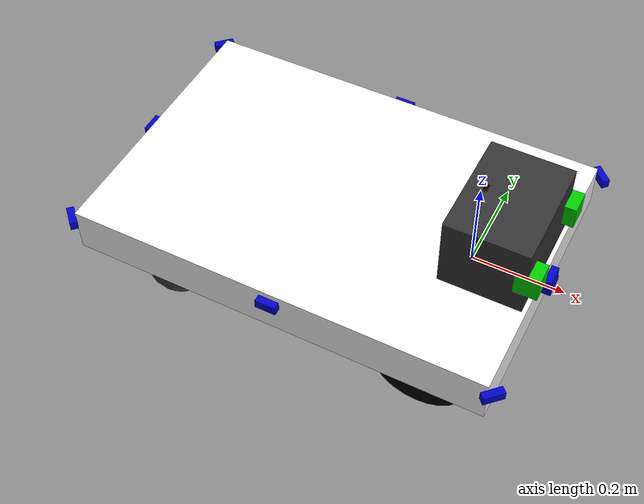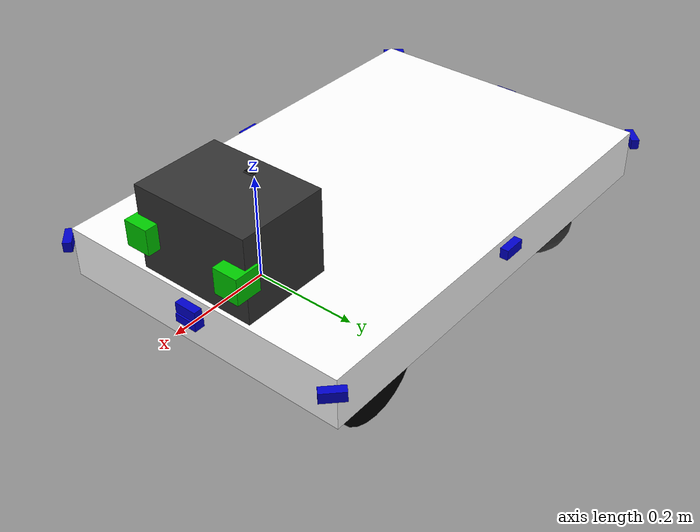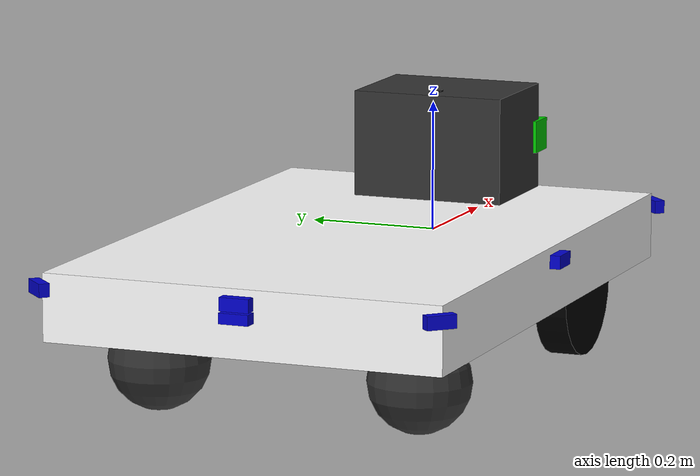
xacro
<?xml version="1.0"?>
<robot name="bytes-v2-nub" xmlns:xacro="http://www.ros.org/wiki/xacro">

    <!-- All measurements are in meters -->
    <xacro:property name="wheel_radius" value="0.1016" />
    <xacro:property name="wheel_mass" value="1"/>
    <xacro:property name="wheel_thickness" value="0.05"/>
    <xacro:property name="wheel_intertia" value="${1.0/12*wheel_mass*(3*wheel_radius*wheel_radius*wheel_radius + wheel_thickness*wheel_thickness)}"/>

    <xacro:property name="base_width" value="0.9144"/>
    <xacro:property name="base_length" value="0.6096"/>
    <xacro:property name="base_thickness" value="0.101092"/>
    <xacro:property name="base_mass" value="20"/>

    <xacro:property name="head_width" value="0.177"/>
    <xacro:property name="head_length" value="0.24"/>
    <xacro:property name="head_thickness" value="0.165"/>
    <xacro:property name="head_mass" value="0.5"/>

    <!-- distance from the edge of the base to the edge of the wheel -->
    <xacro:property name="wheel_base_separation" value="-0.1"/>
    <!-- signed offset from the center of base -->
    <xacro:property name="wheel_offset" value="0.3"/>
    <!-- vertical offset of wheel from the center of the chassis -->
    <xacro:property name="vertical_wheel_offset" value="-0.0762"/>

    <!-- caster offset from edge of chassis (assumed to be centered along the length) -->
    <xacro:property name="caster_offset" value="0.1"/>
    <xacro:property name="caster_radius" value="0.0762"/>
    <xacro:property name="caster_mass" value="0.5"/>
    <xacro:property name="caster_intertia" value="${2.0/5*caster_mass*caster_radius*caster_radius}"/>

    <!-- gazebo plugins -->
    <gazebo>
        <plugin name="gazebo_ros_control" filename="libgazebo_ros_control.so">
            <robotSimType>gazebo_ros_control/DefaultRobotHWSim</robotSimType>
            <legacyModeNS>false</legacyModeNS>
        </plugin>
    </gazebo>

    <xacro:include filename="$(find br-description)/urdf/macros.xacro" />
    <xacro:include filename="$(find br-description)/urdf/br-v2-nub.gazebo" />

    <link name="base_link"/>

    <!-- Add chassis and inertial link -->
    <link name="chassis">
        <interial>
            <xacro:chassis_inertial_params/>
        </interial>
        <visual>
            <xacro:chassis_geometry/>
            <material name="white" />
        </visual>
        <collision>
            <xacro:chassis_geometry/>
        </collision>
    </link>

    <joint name="base_link_joint" type="fixed">
        <origin xyz="${-wheel_offset} 0 0" rpy="0 0 0"/>
        <parent link="base_link"/>
        <child link="chassis"/>
    </joint>

    <!-- Head servo joint and transmission -->
    <link name="head">
        <visual>
            <xacro:head_geometry/>
            <material name="grey" />
        </visual>
        <collision>
            <xacro:head_geometry/>
        </collision>
        <inertial>
            <xacro:head_inertial_params/>
        </inertial>
    </link>
    <joint name="head_joint" type="fixed">
        <origin xyz="0.36 0.0 0.1325" rpy="0 0 0"/>
        <parent link="chassis" />
        <child link="head" />
    </joint>

    <!-- Add left and right wheels -->
    <link name="left_wheel">
        <inertial>
            <xacro:wheel_inertial_params />
        </inertial>
        <visual>
            <xacro:wheel_geometry />
            <material name="black" />
        </visual>
        <collision>
            <xacro:wheel_geometry />
        </collision>
    </link>

    <joint name="left_wheel_joint" type="continuous">
        <origin xyz="${wheel_offset} ${base_length/2 + wheel_base_separation + wheel_thickness/2} ${vertical_wheel_offset}" rpy="1.5708 0 0" />
        <parent link="chassis" />
        <child link="left_wheel" />
        <axis xyz="0 0 -1" />
        <limit effort="10" velocity="100" />
    </joint>

    <xacro:wheel_transmission name="left_wheel" />

    <link name="right_wheel">
        <inertial>
            <xacro:wheel_inertial_params />
        </inertial>
        <visual>
            <xacro:wheel_geometry />
            <material name="black" />
        </visual>
        <collision>
            <xacro:wheel_geometry />
        </collision>
    </link>

    <joint name="right_wheel_joint" type="continuous">
        <origin xyz="${wheel_offset} ${-1*(base_length/2 + wheel_base_separation + wheel_thickness/2)} ${vertical_wheel_offset}" rpy="1.5708 0 0" />
        <parent link="chassis" />
        <child link="right_wheel" />
        <axis xyz="0 0 -1" />
        <limit effort="10" velocity="100" />
    </joint>

    <xacro:wheel_transmission name="right_wheel" />

    <!-- Add left and right casters -->
    <link name="left_caster">
        <inertial>
            <xacro:caster_inertial_params />
        </inertial>
        <visual>
            <xacro:caster_geometry />
            <material name="grey" />
        </visual>
        <collision>
            <xacro:caster_geometry />
        </collision>
    </link>

    <joint name="left_caster_joint" type="fixed">
        <origin xyz="${-base_width/2 + caster_radius + caster_offset} ${-base_length/3} ${vertical_wheel_offset + caster_radius - wheel_radius}" rpy="0 0 0" />
        <parent link="chassis" />
        <child link="left_caster" />
    </joint>

    <link name="right_caster">
        <inertial>
            <xacro:caster_inertial_params />
        </inertial>
        <visual>
            <xacro:caster_geometry />
            <material name="grey" />
        </visual>
        <collision>
            <xacro:caster_geometry />
        </collision>
    </link>

    <joint name="right_caster_joint" type="fixed">
        <origin xyz="${-base_width/2 + caster_radius + caster_offset} ${base_length/3} ${vertical_wheel_offset + caster_radius - wheel_radius}" rpy="0 0 0" />
        <parent link="chassis" />
        <child link="right_caster" />
    </joint>

    <xacro:dist_sensor name="rear" x="${-(base_width/2 + 0.01)}" y="0" z="${base_thickness/2 - 0.02}" r="0" p="0" yaw="3.14159"/>
    <xacro:dist_sensor name="rear_bottom" x="${-(base_width/2 + 0.01)}" y="0" z="${base_thickness/2 - 0.04}" r="0" p="1.5708" yaw="3.14159"/>
    <xacro:dist_sensor name="rear_left" x="${-(base_width/2 + 0.01)}" y="${base_length/2}" z="${base_thickness/2 - 0.02}" r="0" p="0" yaw="2.356"/>
    <xacro:dist_sensor name="rear_right" x="${-(base_width/2 + 0.01)}" y="${-base_length/2}" z="${base_thickness/2 - 0.02}" r="0" p="0" yaw="3.927"/>
    <xacro:dist_sensor name="front" x="${(base_width/2 + 0.01)}" y="0" z="${base_thickness/2 - 0.02}" r="0" p="0" yaw="0"/>
    <xacro:dist_sensor name="front_bottom" x="${(base_width/2 + 0.01)}" y="0" z="${base_thickness/2 - 0.04}" r="0" p="1.5708" yaw="3.14159"/>
    <xacro:dist_sensor name="front_left" x="${(base_width/2 + 0.01)}" y="${base_length/2}" z="${base_thickness/2 - 0.02}" r="0" p="0" yaw="0.7854"/>
    <xacro:dist_sensor name="front_right" x="${(base_width/2 + 0.01)}" y="${-base_length/2}" z="${base_thickness/2 - 0.02}" r="0" p="0" yaw="-0.7854"/>
    <xacro:dist_sensor name="right" x="0" y="${-(base_length/2 + 0.01)}" z="${base_thickness/2 - 0.02}" r="0" p="0" yaw="-1.5708"/>
    <xacro:dist_sensor name="left" x="0" y="${base_length/2 + 0.01}" z="${base_thickness/2 - 0.02}" r="0" p="0" yaw="1.5708"/>

    <!-- IMU -->
    <link name="imu_link">
        <visual>
            <geometry>
                <box size="0.001 0.002 0.0005" />
            </geometry>
            <material name="black" />
        </visual>
    </link>
    <joint name="head_imu_joint" type="fixed">
        <origin xyz="0.0 0.00 0.08" rpy="0 0 0" />
        <parent link="head" />
        <child link="imu_link" />
    </joint>
    <gazebo reference="imu_link">
        <gravity>false</gravity>
        <sensor name="imu_sensor" type="imu">
            <always_on>true</always_on>
            <update_rate>30</update_rate>
            <visualize>true</visualize>
            <topic>__default_topic__</topic>
            <plugin filename="libgazebo_ros_imu_sensor.so" name="imu_plugin">
                <topicName>/imu/data</topicName>
                <bodyName>imu_link</bodyName>
                <updateRateHZ>60.0</updateRateHZ>
                <gaussianNoise>0.001</gaussianNoise>
                <xyzOffset>0 0 0</xyzOffset>
                <rpyOffset>0 0 0</rpyOffset>
                <frameName>imu_link</frameName>
            </plugin>
            <pose>0 0 0 0 0 0</pose>
        </sensor>
   </gazebo>

    <!-- Barometer -->
    <link name="barometer_link">
        <visual>
            <geometry>
                <box size="0.001 0.002 0.0005" />
            </geometry>
            <material name="black" />
        </visual>
    </link>
    <joint name="head_barometer_joint" type="fixed">
        <origin xyz="0.05 0.00 0.08" rpy="0 0 0" />
        <parent link="head" />
        <child link="barometer_link" />
    </joint>
    <gazebo>
      <plugin name="p3d_base_controller" filename="libgazebo_ros_p3d.so">
        <alwaysOn>true</alwaysOn>
        <updateRate>30.0</updateRate>
        <bodyName>base_link</bodyName>
        <topicName>ground_truth/state</topicName>
        <gaussianNoise>0.01</gaussianNoise>
        <frameName>world</frameName>
        <xyzOffsets>0 0 0</xyzOffsets>
        <rpyOffsets>0 0 0</rpyOffsets>
      </plugin>
    </gazebo>

    <!-- GPS -->
    <link name="gps_link">
        <visual>
            <geometry>
                <box size="0.01 0.02 0.005" />
            </geometry>
            <material name="black" />
        </visual>
    </link>
    <joint name="head_gps_joint" type="fixed">
        <origin xyz="-0.05 0.0 0.0825" rpy="0 0 0" />
        <parent link="head" />
        <child link="gps_link" />
    </joint>
    <gazebo>
        <plugin name="gps_controller" filename="libhector_gazebo_ros_gps.so">
            <updateRate>10.0</updateRate>
            <bodyName>base_link</bodyName>
            <frameId>gps_link</frameId>
            <topicName>/gps</topicName>
            <referenceLatitude>38.5853618</referenceLatitude>
            <referenceLongitude>-121.3594389</referenceLongitude>
            <velocityTopicName>/gps/ignore</velocityTopicName>
            <drift>5.0 5.0 5.0</drift>
            <gaussianNoise>0.1 0.1 0.1</gaussianNoise>
            <velocityDrift>0 0 0</velocityDrift>
            <velocityGaussianNoise>0.1 0.1 0.1</velocityGaussianNoise>
        </plugin>
        <material>Gazebo/Grey</material>
    </gazebo>

    <!-- Main cameras - left camera is used for main camera feed, right camera is used for stereo (camera are approximately 200mm appart) -->
    <link name="stereo_cam_link"/>
    <joint name="head_stereo_cam_joint" type="fixed">
        <origin xyz="${head_width/2} 0.0 0.0" rpy="0 0 0" />
        <parent link="head" />
        <child link="stereo_cam_link" />
    </joint>
    <xacro:camera_sensor name="stereo/left" x="0" y="0.1" z="0" r="0" p="0" yaw="0" parent="stereo_cam_link"/>
    <xacro:camera_sensor name="stereo/right" x="0" y="-0.1" z="0" r="0" p="0" yaw="0" parent="stereo_cam_link"/>
</robot>

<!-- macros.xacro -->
<robot name="bytes" xmlns:xacro="http://www.ros.org/wiki/xacro">
    <!-- https://en.wikipedia.org/wiki/List_of_moments_of_inertia -->

    <xacro:macro name="chassis_inertial_params">
        <origin xyz="0.1477 0 0" rpy="0 0 0" />
        <mass value="${base_mass}" />
        <inertia ixx="${1.0/12*base_mass*(base_thickness*base_thickness + base_width*base_width)}" ixy="0" ixz="0"
                 iyy="${1.0/12*base_mass*(base_length*base_length + base_width*base_width)}"   iyz="0"
                 izz="${1.0/12*base_mass*(base_thickness*base_thickness + base_length*base_length)}" />
    </xacro:macro>

    <xacro:macro name="head_inertial_params">
        <origin xyz="0 0 0" rpy="0 0 0" />
        <mass value="${head_mass}" />
        <inertia ixx="${1.0/12*head_mass*(head_thickness*head_thickness + head_width*head_width)}" ixy="0" ixz="0"
                 iyy="${1.0/12*head_mass*(head_length*head_length + head_width*head_width)}"   iyz="0"
                 izz="${1.0/12*head_mass*(head_thickness*head_thickness + head_length*head_length)}" />
    </xacro:macro>

    <xacro:macro name="wheel_inertial_params">
        <origin xyz="0 0 -0.0225" rpy="0 0 0" />
        <mass value="${wheel_mass}" />
        <inertia ixx="${wheel_intertia}" ixy="0"          ixz="0"
                            iyy="${wheel_intertia}" iyz="0"
                                             izz="${wheel_intertia}" />
    </xacro:macro>

    <xacro:macro name="caster_inertial_params">
        <origin xyz="0 0 -0.0225" rpy="0 0 0" />
        <mass value="${caster_mass}" />
        <inertia ixx="${caster_intertia}" ixy="0"          ixz="0"
                            iyy="${caster_intertia}" iyz="0"
                                             izz="${caster_intertia}" />
    </xacro:macro>

    <xacro:macro name="chassis_geometry">
        <origin xyz="0 0 0" rpy="0 0 0" />
        <geometry>
            <box size="${base_width} ${base_length} ${base_thickness}" />
        </geometry>
    </xacro:macro>

    <xacro:macro name="head_geometry">
        <origin xyz="0 0 0" rpy="0 0 0" />
        <geometry>
            <box size="${head_width} ${head_length} ${head_thickness}" />
        </geometry>
    </xacro:macro>

    <xacro:macro name="wheel_geometry">
        <origin xyz="0 0 0" rpy="0 0 0" />
        <geometry>
            <cylinder radius="${wheel_radius}" length="${wheel_thickness}" />
        </geometry>
    </xacro:macro>

    <xacro:macro name="caster_geometry">
        <origin xyz="0 0 0" rpy="0 0 0" />
        <geometry>
            <sphere radius="${caster_radius}" />
        </geometry>
    </xacro:macro>

    <!-- transmission macros -->

    <xacro:macro name="wheel_transmission" params="name">
        <transmission name="${name}_transmission" type="SimpleTransmission">
            <type>transmission_interface/SimpleTransmission</type>
            <joint name="${name}_joint">
                <hardwareInterface>hardware_interface/VelocityJointInterface</hardwareInterface>
            </joint>
            <actuator name="${name}_motor">
                <hardwareInterface>hardware_interface/VelocityJointInterface</hardwareInterface>
                <mechanicalReduction>1</mechanicalReduction>
            </actuator>
        </transmission>
    </xacro:macro>

    <!-- Ultrasonic sensor xacro -->
    <xacro:macro name="dist_sensor" params="name x y z r p yaw">
        <link name="${name}_dist_sensor">
            <visual>
                <origin xyz="0 0 0" rpy="1.5708 0 1.5708" />
                <geometry>
                    <box size="0.045 0.020 0.01602" />
                </geometry>
                <material name="blue" />
            </visual>
        </link>
        <gazebo reference="${name}_dist_sensor">
            <sensor type="ray" name="sonar2">
              <pose>0 0 0 0 0 3.14159</pose>
              <update_rate>75</update_rate>
              <ray>
                <scan>
                  <horizontal>
                    <samples>5</samples>
                    <resolution>1.0</resolution>
                    <min_angle>-0.1</min_angle>
                    <max_angle>0.1</max_angle>
                  </horizontal>
                  <vertical>
                    <samples>5</samples>
                    <resolution>1</resolution>
                    <min_angle>-0.01</min_angle>
                    <max_angle>0.01</max_angle>
                  </vertical>
                </scan>
                <range>
                  <min>0.02</min>
                  <max>4.00</max>
                  <resolution>0.01</resolution>
                </range>
              </ray>
              <plugin filename="libgazebo_ros_range.so" name="gazebo_ros_range2">
                <gaussianNoise>0.005</gaussianNoise>
                <alwaysOn>true</alwaysOn>
                <updateRate>75</updateRate>
                <topicName>/distance/${name}</topicName>
                <frameName>${name}_dist_sensor</frameName>
                <fov>0.2</fov>
                <radiation>ultrasound</radiation>
              </plugin>
            </sensor>
            <material>Gazebo/Blue</material>
        </gazebo>
        <joint name="${name}_dist_sensor_joint" type="fixed">
            <origin xyz="${x} ${y} ${z}" rpy="${r} ${p} ${yaw}" />
            <parent link="chassis" />
            <child link="${name}_dist_sensor" />
        </joint>
    </xacro:macro>

    <xacro:macro name="camera_sensor" params="name x y z r p yaw parent">
        <link name="${name}_link">
            <origin xyz="0 0 0" rpy="0 0 0"/>
            <visual>
                <origin xyz="0 0 0" rpy="0 0 0"/>
                <geometry>
                    <box size="0.05 0.05 0.05"/>
                </geometry>
                <material name="green"/>
            </visual>
        </link>

        <joint name="${name}_joint" type="fixed">
            <origin xyz="${x} ${y} ${z}" rpy="${r} ${p} ${yaw}"/> <!-- +z should point into the plane of the image  -->
            <parent link="${parent}"/>
            <child link="${name}_link"/>
        </joint>

        <!-- need an optical joint to make the camera spec work -->
        <joint name="${name}_optical_joint" type="fixed">
            <!-- these values have to be these values otherwise the gazebo camera
            image won't be aligned properly with the frame it is supposedly
            originating from -->
            <origin xyz="0 0 0" rpy="${-pi/2} 0 ${-pi/2}"/>
            <parent link="${name}_link"/>
            <child link="${name}_link_optical"/>
        </joint>

        <link name="${name}_link_optical"/>

        <gazebo reference="${name}_link">
            <sensor type="camera" name="${name}">
                <update_rate>15.0</update_rate>
                <camera name="${name}">
                <horizontal_fov>1.3962634</horizontal_fov>
                <image>
                    <width>320</width>
                    <height>180</height>
                    <format>R8G8B8</format>
                </image>
                <clip>
                  <near>0.02</near>
                    <far>300</far>
                </clip>
                <noise>
                    <type>gaussian</type>
                    <mean>0.0</mean>
                    <stddev>0.007</stddev>
                </noise>
                </camera>
                <plugin name="camera_controller" filename="libgazebo_ros_camera.so">
                    <alwaysOn>true</alwaysOn>
                    <updateRate>0.0</updateRate>
                    <cameraName>${name}</cameraName>
                    <imageTopicName>image_raw</imageTopicName>
                    <cameraInfoTopicName>camera_info</cameraInfoTopicName>
                    <frameName>${name}_link_optical</frameName>
                    <hackBaseline>0.2</hackBaseline>
                    <distortionK1>0.0</distortionK1>
                    <distortionK2>0.0</distortionK2>
                    <distortionK3>0.0</distortionK3>
                    <distortionT1>0.0</distortionT1>
                    <distortionT2>0.0</distortionT2>
                </plugin>
            </sensor>
            <material>Gazebo/Green</material>
        </gazebo>
    </xacro:macro>

    <!-- Add the remaining xacros -->
    <xacro:include filename="$(find br-description)/urdf/materials.xacro" />

</robot>

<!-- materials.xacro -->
<robot name="garbage-bytes" xmlns:xacro="http://www.ros.org/wiki/xacro">

    <material name="black">
      <color rgba="0.0 0.0 0.0 1.0"/>
    </material>

    <material name="blue">
      <color rgba="0.0 0.0 0.8 1.0"/>
    </material>

    <material name="green">
      <color rgba="0.0 0.8 0.0 1.0"/>
    </material>

    <material name="grey">
      <color rgba="0.2 0.2 0.2 1.0"/>
    </material>

    <material name="orange">
      <color rgba="${255/255} ${108/255} ${10/255} 1.0"/>
    </material>

    <material name="brown">
      <color rgba="${222/255} ${207/255} ${195/255} 1.0"/>
    </material>

    <material name="red">
      <color rgba="0.8 0.0 0.0 1.0"/>
    </material>

    <material name="white">
      <color rgba="1.0 1.0 1.0 1.0"/>
    </material>

</robot>

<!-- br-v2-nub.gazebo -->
<robot name="bytes" xmlns:xacro="http://www.ros.org/wiki/xacro">

    <!-- http://gazebosim.org/tutorials/?tut=ros_urdf -->

    <arg name="minDepth" default="0.0"/>
    <arg name="maxVel"   default="10"/>

    <gazebo reference="chassis">
        <mu1 value="1.0"/>
        <mu2 value="1.0"/>
        <kp  value="10000000.0" />
        <kd  value="1.0" />
        <minDepth value="$(arg minDepth)"/>
        <maxVel value="$(arg maxVel)"/>
        <material>Gazebo/White</material>
    </gazebo>

    <gazebo reference="right_wheel">
        <mu1 value="0.8"/>
        <mu2 value="0.8"/>
        <kp  value="10000000.0" />
        <kd  value="1.0" />
        <minDepth value="$(arg minDepth)"/>
        <maxVel value="$(arg maxVel)"/>
        <material>Gazebo/Black</material>
    </gazebo>

    <gazebo reference="left_wheel">
        <mu1 value="0.8"/>
        <mu2 value="0.8"/>
        <kp  value="10000000.0" />
        <kd  value="1.0" />
        <minDepth value="$(arg minDepth)"/>
        <maxVel value="$(arg maxVel)"/>
        <material>Gazebo/Black</material>
    </gazebo>

    <gazebo reference="left_caster">
        <mu1 value="0.0"/>
        <mu2 value="0.0"/>
        <kp  value="10000000.0" />
        <kd  value="1.0" />
        <minDepth value="$(arg minDepth)"/>
        <maxVel value="$(arg maxVel)"/>
        <material>Gazebo/Grey</material>
    </gazebo>

    <gazebo reference="right_caster">
        <mu1 value="0.0"/>
        <mu2 value="0.0"/>
        <kp  value="10000000.0" />
        <kd  value="1.0" />
        <minDepth value="$(arg minDepth)"/>
        <maxVel value="$(arg maxVel)"/>
        <material>Gazebo/Grey</material>
    </gazebo>

    <gazebo reference="head">
        <mu1 value="0.0"/>
        <mu2 value="0.0"/>
        <kp  value="10000000.0" />
        <kd  value="1.0" />
        <minDepth value="$(arg minDepth)"/>
        <maxVel value="$(arg maxVel)"/>
        <material>Gazebo/Grey</material>
    </gazebo>

</robot>
